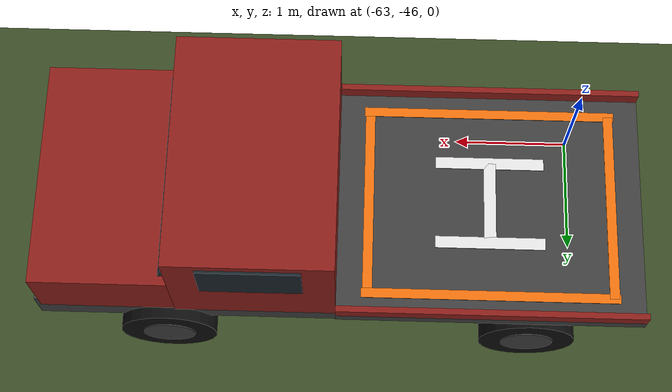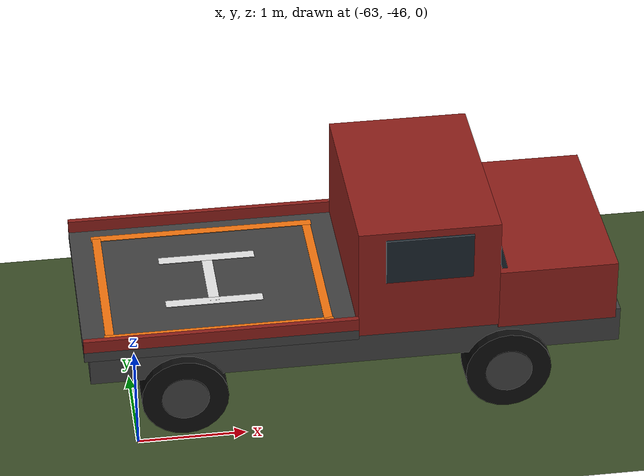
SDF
<sdf version="1.11">
 <world name="hive_base">
  <model name="ground_plane">
   <static>true</static>
   <link name="link">
    <collision name="collision">
     <geometry><plane><normal>0 0 1</normal><size>1000 1000</size></plane></geometry>
     <surface><friction><ode><mu>1.0</mu><mu2>1.0</mu2></ode></friction></surface>
    </collision>
    <visual name="visual">
     <geometry><plane><normal>0 0 1</normal><size>1000 1000</size></plane></geometry>
     <material>
      <ambient>0.23 0.3 0.15 1</ambient>
      <diffuse>0.23 0.3 0.15 1</diffuse>
      <specular>0.05 0.05 0.05 1</specular>
     </material>
    </visual>
   </link>
  </model>
  <model name="truck">
   <pose>-61.049 -45 0.05 0 0 0</pose>
   <link name="chassis">
    <pose>0 0 0.4 0 0 0</pose>
    <inertial>
     <pose>0.2 0 0.2 0 0 0</pose>
     <mass>1500</mass>
     <inertia><ixx>485</ixx><ixy>0</ixy><ixz>0</ixz><iyy>2960</iyy><iyz>0</iyz><izz>3285</izz></inertia>
    </inertial>
    <collision name="frame">
     <pose>0.1 0 0.35 0 0 0</pose>
     <geometry><box><size>4.9 1.8 0.35</size></box></geometry>
    </collision>
    <collision name="cab">
     <pose>1.25 0 1.05 0 0 0</pose>
     <geometry><box><size>2.3 1.9 1.1</size></box></geometry>
    </collision>
    <collision name="bed">
     <pose>-1.15 0 0.55 0 0 0</pose>
     <geometry><box><size>2.5 2 0.1</size></box></geometry>
     <surface><friction><ode><mu>1.5</mu><mu2>1.5</mu2></ode></friction></surface>
    </collision>
    <visual name="v1">
     <pose>0.1 0 0.35 0 0 0</pose>
     <geometry><box><size>4.9 1.8 0.35</size></box></geometry>
     <material>
      <ambient>0.25 0.25 0.25 1</ambient>
      <diffuse>0.25 0.25 0.25 1</diffuse>
      <specular>0.05 0.05 0.05 1</specular>
     </material>
    </visual>
    <visual name="v2">
     <pose>1.95 0 0.75 0 0 0</pose>
     <geometry><box><size>1.1 1.85 0.6</size></box></geometry>
     <material>
      <ambient>0.55 0.12 0.1 1</ambient>
      <diffuse>0.55 0.12 0.1 1</diffuse>
      <specular>0.05 0.05 0.05 1</specular>
     </material>
    </visual>
    <visual name="v3">
     <pose>0.75 0 1.05 0 0 0</pose>
     <geometry><box><size>1.3 1.9 1.1</size></box></geometry>
     <material>
      <ambient>0.55 0.12 0.1 1</ambient>
      <diffuse>0.55 0.12 0.1 1</diffuse>
      <specular>0.05 0.05 0.05 1</specular>
     </material>
    </visual>
    <visual name="v4">
     <pose>1.41 0 1.25 0 -0.25 0</pose>
     <geometry><box><size>0.05 1.7 0.55</size></box></geometry>
     <material>
      <ambient>0.1 0.14 0.17 1</ambient>
      <diffuse>0.1 0.14 0.17 1</diffuse>
      <specular>0.05 0.05 0.05 1</specular>
     </material>
    </visual>
    <visual name="v5">
     <pose>0.75 -0.96 1.3 0 0 0</pose>
     <geometry><box><size>0.8 0.02 0.45</size></box></geometry>
     <material>
      <ambient>0.1 0.14 0.17 1</ambient>
      <diffuse>0.1 0.14 0.17 1</diffuse>
      <specular>0.05 0.05 0.05 1</specular>
     </material>
    </visual>
    <visual name="v6">
     <pose>2.5 -0.7 0.8 0 1.571 0</pose>
     <geometry><cylinder><radius>0.1</radius><length>0.06</length></cylinder></geometry>
     <material>
      <ambient>0.9 0.9 0.8 1</ambient>
      <diffuse>0.9 0.9 0.8 1</diffuse>
      <specular>0.05 0.05 0.05 1</specular>
     </material>
    </visual>
    <visual name="v7">
     <pose>0.75 0.96 1.3 0 0 0</pose>
     <geometry><box><size>0.8 0.02 0.45</size></box></geometry>
     <material>
      <ambient>0.1 0.14 0.17 1</ambient>
      <diffuse>0.1 0.14 0.17 1</diffuse>
      <specular>0.05 0.05 0.05 1</specular>
     </material>
    </visual>
    <visual name="v8">
     <pose>2.5 0.7 0.8 0 1.571 0</pose>
     <geometry><cylinder><radius>0.1</radius><length>0.06</length></cylinder></geometry>
     <material>
      <ambient>0.9 0.9 0.8 1</ambient>
      <diffuse>0.9 0.9 0.8 1</diffuse>
      <specular>0.05 0.05 0.05 1</specular>
     </material>
    </visual>
    <visual name="v9">
     <pose>-1.15 0 0.55 0 0 0</pose>
     <geometry><box><size>2.5 2 0.1</size></box></geometry>
     <material>
      <ambient>0.25 0.25 0.25 1</ambient>
      <diffuse>0.25 0.25 0.25 1</diffuse>
      <specular>0.05 0.05 0.05 1</specular>
     </material>
    </visual>
    <visual name="v10">
     <pose>-1.15 -0.975 0.66 0 0 0</pose>
     <geometry><box><size>2.5 0.05 0.12</size></box></geometry>
     <material>
      <ambient>0.55 0.12 0.1 1</ambient>
      <diffuse>0.55 0.12 0.1 1</diffuse>
      <specular>0.05 0.05 0.05 1</specular>
     </material>
    </visual>
    <visual name="v11">
     <pose>-1.15 0.975 0.66 0 0 0</pose>
     <geometry><box><size>2.5 0.05 0.12</size></box></geometry>
     <material>
      <ambient>0.55 0.12 0.1 1</ambient>
      <diffuse>0.55 0.12 0.1 1</diffuse>
      <specular>0.05 0.05 0.05 1</specular>
     </material>
    </visual>
    <visual name="v12">
     <pose>-1.15 0.8 0.603 0 0 0</pose>
     <geometry><box><size>2.1 0.08 0.006</size></box></geometry>
     <material>
      <ambient>0.95 0.45 0.05 1</ambient>
      <diffuse>0.95 0.45 0.05 1</diffuse>
      <specular>0.05 0.05 0.05 1</specular>
     </material>
    </visual>
    <visual name="v13">
     <pose>-1.15 -0.8 0.603 0 0 0</pose>
     <geometry><box><size>2.1 0.08 0.006</size></box></geometry>
     <material>
      <ambient>0.95 0.45 0.05 1</ambient>
      <diffuse>0.95 0.45 0.05 1</diffuse>
      <specular>0.05 0.05 0.05 1</specular>
     </material>
    </visual>
    <visual name="v14">
     <pose>-0.15 0 0.603 0 0 0</pose>
     <geometry><box><size>0.08 1.6 0.006</size></box></geometry>
     <material>
      <ambient>0.95 0.45 0.05 1</ambient>
      <diffuse>0.95 0.45 0.05 1</diffuse>
      <specular>0.05 0.05 0.05 1</specular>
     </material>
    </visual>
    <visual name="v15">
     <pose>-2.15 0 0.603 0 0 0</pose>
     <geometry><box><size>0.08 1.6 0.006</size></box></geometry>
     <material>
      <ambient>0.95 0.45 0.05 1</ambient>
      <diffuse>0.95 0.45 0.05 1</diffuse>
      <specular>0.05 0.05 0.05 1</specular>
     </material>
    </visual>
    <visual name="v16">
     <pose>-1.15 -0.35 0.603 0 0 0</pose>
     <geometry><box><size>0.9 0.1 0.006</size></box></geometry>
     <material>
      <ambient>0.9 0.9 0.9 1</ambient>
      <diffuse>0.9 0.9 0.9 1</diffuse>
      <specular>0.05 0.05 0.05 1</specular>
     </material>
    </visual>
    <visual name="v17">
     <pose>-1.15 0.35 0.603 0 0 0</pose>
     <geometry><box><size>0.9 0.1 0.006</size></box></geometry>
     <material>
      <ambient>0.9 0.9 0.9 1</ambient>
      <diffuse>0.9 0.9 0.9 1</diffuse>
      <specular>0.05 0.05 0.05 1</specular>
     </material>
    </visual>
    <visual name="v18">
     <pose>-1.15 0 0.603 0 0 0</pose>
     <geometry><box><size>0.1 0.7 0.006</size></box></geometry>
     <material>
      <ambient>0.9 0.9 0.9 1</ambient>
      <diffuse>0.9 0.9 0.9 1</diffuse>
      <specular>0.05 0.05 0.05 1</specular>
     </material>
    </visual>
    <sensor name="bed_contact" type="contact">
     <always_on>true</always_on>
     <update_rate>50</update_rate>
     <topic>/truck/bed_contact</topic>
     <contact><collision>bed</collision><topic>/truck/bed_contact</topic></contact>
    </sensor>
   </link>
   <link name="front_left_wheel">
    <pose>1.5 0.85 0.4 -1.571 0 0</pose>
    <inertial>
     <mass>30</mass>
     <inertia><ixx>1.425</ixx><ixy>0</ixy><ixz>0</ixz><iyy>1.425</iyy><iyz>0</iyz><izz>2.4</izz></inertia>
    </inertial>
    <visual name="tyre">
     <geometry><cylinder><radius>0.4</radius><length>0.3</length></cylinder></geometry>
     <material>
      <ambient>0.05 0.05 0.05 1</ambient>
      <diffuse>0.05 0.05 0.05 1</diffuse>
      <specular>0.05 0.05 0.05 1</specular>
     </material>
    </visual>
    <visual name="rim">
     <geometry><cylinder><radius>0.22</radius><length>0.32</length></cylinder></geometry>
     <material>
      <ambient>0.25 0.25 0.25 1</ambient>
      <diffuse>0.25 0.25 0.25 1</diffuse>
      <specular>0.05 0.05 0.05 1</specular>
     </material>
    </visual>
    <collision name="collision">
     <geometry><cylinder><radius>0.4</radius><length>0.3</length></cylinder></geometry>
     <surface><friction><ode><mu>1.0</mu><mu2>1.0</mu2></ode></friction></surface>
    </collision>
   </link>
   <link name="front_left_steering">
    <pose>1.5 0.722 0.4 0 0 0</pose>
    <inertial>
     <mass>5</mass>
     <inertia><ixx>0.05</ixx><ixy>0</ixy><ixz>0</ixz><iyy>0.05</iyy><iyz>0</iyz><izz>0.05</izz></inertia>
    </inertial>
   </link>
   <link name="front_right_wheel">
    <pose>1.5 -0.85 0.4 -1.571 0 0</pose>
    <inertial>
     <mass>30</mass>
     <inertia><ixx>1.425</ixx><ixy>0</ixy><ixz>0</ixz><iyy>1.425</iyy><iyz>0</iyz><izz>2.4</izz></inertia>
    </inertial>
    <visual name="tyre">
     <geometry><cylinder><radius>0.4</radius><length>0.3</length></cylinder></geometry>
     <material>
      <ambient>0.05 0.05 0.05 1</ambient>
      <diffuse>0.05 0.05 0.05 1</diffuse>
      <specular>0.05 0.05 0.05 1</specular>
     </material>
    </visual>
    <visual name="rim">
     <geometry><cylinder><radius>0.22</radius><length>0.32</length></cylinder></geometry>
     <material>
      <ambient>0.25 0.25 0.25 1</ambient>
      <diffuse>0.25 0.25 0.25 1</diffuse>
      <specular>0.05 0.05 0.05 1</specular>
     </material>
    </visual>
    <collision name="collision">
     <geometry><cylinder><radius>0.4</radius><length>0.3</length></cylinder></geometry>
     <surface><friction><ode><mu>1.0</mu><mu2>1.0</mu2></ode></friction></surface>
    </collision>
   </link>
   <link name="front_right_steering">
    <pose>1.5 -0.722 0.4 0 0 0</pose>
    <inertial>
     <mass>5</mass>
     <inertia><ixx>0.05</ixx><ixy>0</ixy><ixz>0</ixz><iyy>0.05</iyy><iyz>0</iyz><izz>0.05</izz></inertia>
    </inertial>
   </link>
   <link name="rear_left_wheel">
    <pose>-1.5 0.85 0.4 -1.571 0 0</pose>
    <inertial>
     <mass>30</mass>
     <inertia><ixx>1.425</ixx><ixy>0</ixy><ixz>0</ixz><iyy>1.425</iyy><iyz>0</iyz><izz>2.4</izz></inertia>
    </inertial>
    <visual name="tyre">
     <geometry><cylinder><radius>0.4</radius><length>0.3</length></cylinder></geometry>
     <material>
      <ambient>0.05 0.05 0.05 1</ambient>
      <diffuse>0.05 0.05 0.05 1</diffuse>
      <specular>0.05 0.05 0.05 1</specular>
     </material>
    </visual>
    <visual name="rim">
     <geometry><cylinder><radius>0.22</radius><length>0.32</length></cylinder></geometry>
     <material>
      <ambient>0.25 0.25 0.25 1</ambient>
      <diffuse>0.25 0.25 0.25 1</diffuse>
      <specular>0.05 0.05 0.05 1</specular>
     </material>
    </visual>
    <collision name="collision">
     <geometry><cylinder><radius>0.4</radius><length>0.3</length></cylinder></geometry>
     <surface><friction><ode><mu>1.0</mu><mu2>1.0</mu2></ode></friction></surface>
    </collision>
   </link>
   <link name="rear_right_wheel">
    <pose>-1.5 -0.85 0.4 -1.571 0 0</pose>
    <inertial>
     <mass>30</mass>
     <inertia><ixx>1.425</ixx><ixy>0</ixy><ixz>0</ixz><iyy>1.425</iyy><iyz>0</iyz><izz>2.4</izz></inertia>
    </inertial>
    <visual name="tyre">
     <geometry><cylinder><radius>0.4</radius><length>0.3</length></cylinder></geometry>
     <material>
      <ambient>0.05 0.05 0.05 1</ambient>
      <diffuse>0.05 0.05 0.05 1</diffuse>
      <specular>0.05 0.05 0.05 1</specular>
     </material>
    </visual>
    <visual name="rim">
     <geometry><cylinder><radius>0.22</radius><length>0.32</length></cylinder></geometry>
     <material>
      <ambient>0.25 0.25 0.25 1</ambient>
      <diffuse>0.25 0.25 0.25 1</diffuse>
      <specular>0.05 0.05 0.05 1</specular>
     </material>
    </visual>
    <collision name="collision">
     <geometry><cylinder><radius>0.4</radius><length>0.3</length></cylinder></geometry>
     <surface><friction><ode><mu>1.0</mu><mu2>1.0</mu2></ode></friction></surface>
    </collision>
   </link>
   <joint name="front_left_steering_joint" type="revolute">
    <parent>chassis</parent>
    <child>front_left_steering</child>
    <axis>
     <xyz>0 0 1</xyz>
     <limit><lower>-0.6</lower><upper>0.6</upper><velocity>2.0</velocity><effort>20000</effort></limit>
    </axis>
   </joint>
   <joint name="front_left_wheel_joint" type="revolute">
    <parent>front_left_steering</parent>
    <child>front_left_wheel</child>
    <axis><xyz>0 0 1</xyz><limit><lower>-1e16</lower><upper>1e16</upper></limit></axis>
   </joint>
   <joint name="front_right_steering_joint" type="revolute">
    <parent>chassis</parent>
    <child>front_right_steering</child>
    <axis>
     <xyz>0 0 1</xyz>
     <limit><lower>-0.6</lower><upper>0.6</upper><velocity>2.0</velocity><effort>20000</effort></limit>
    </axis>
   </joint>
   <joint name="front_right_wheel_joint" type="revolute">
    <parent>front_right_steering</parent>
    <child>front_right_wheel</child>
    <axis><xyz>0 0 1</xyz><limit><lower>-1e16</lower><upper>1e16</upper></limit></axis>
   </joint>
   <joint name="rear_left_wheel_joint" type="revolute">
    <parent>chassis</parent>
    <child>rear_left_wheel</child>
    <axis><xyz>0 0 1</xyz><limit><lower>-1e16</lower><upper>1e16</upper></limit></axis>
   </joint>
   <joint name="rear_right_wheel_joint" type="revolute">
    <parent>chassis</parent>
    <child>rear_right_wheel</child>
    <axis><xyz>0 0 1</xyz><limit><lower>-1e16</lower><upper>1e16</upper></limit></axis>
   </joint>
   <plugin filename="gz-sim-ackermann-steering-system" name="gz::sim::systems::AckermannSteering">
    <left_joint>front_left_wheel_joint</left_joint>
    <left_joint>rear_left_wheel_joint</left_joint>
    <right_joint>front_right_wheel_joint</right_joint>
    <right_joint>rear_right_wheel_joint</right_joint>
    <left_steering_joint>front_left_steering_joint</left_steering_joint>
    <right_steering_joint>front_right_steering_joint</right_steering_joint>
    <kingpin_width>1.445</kingpin_width>
    <steering_limit>0.6</steering_limit>
    <wheel_base>3</wheel_base>
    <wheel_separation>1.7</wheel_separation>
    <wheel_radius>0.4</wheel_radius>
    <steer_p_gain>8.0</steer_p_gain>
    <min_velocity>-3</min_velocity>
    <max_velocity>12</max_velocity>
    <min_acceleration>-4</min_acceleration>
    <max_acceleration>2.5</max_acceleration>
    <topic>/truck/cmd_vel</topic>
   </plugin>
   <plugin filename="gz-sim-odometry-publisher-system" name="gz::sim::systems::OdometryPublisher">
    <odom_topic>/truck/odom</odom_topic>
    <odom_frame>world</odom_frame>
    <robot_base_frame>truck</robot_base_frame>
    <odom_publish_frequency>50</odom_publish_frequency>
    <dimensions>3</dimensions>
   </plugin>
  </model>
 </world>
</sdf>
